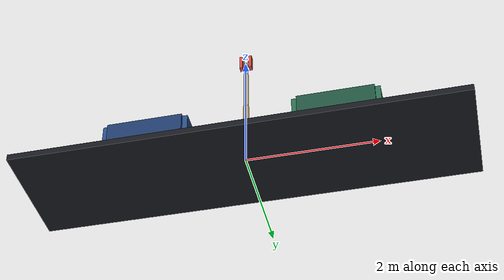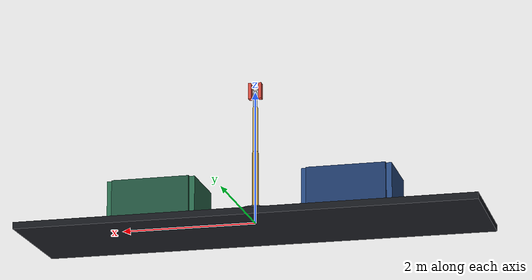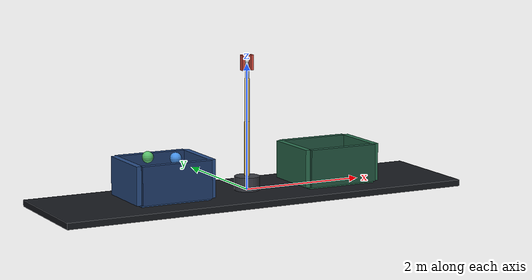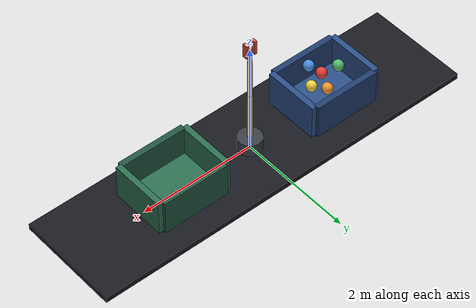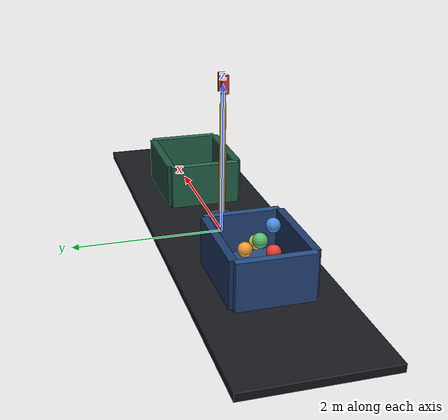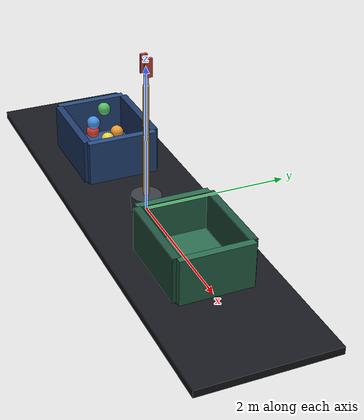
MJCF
<mujoco model="nano_robot_sorter">
  <compiler angle="degree" coordinate="local"/>
  <option timestep="0.004" gravity="0 0 -9.81"/>

  <default>
    <geom friction="0.85 0.12 0.08" solref="0.012 1" solimp="0.9 0.96 0.001"/>
    <joint damping="1.2" armature="0.02"/>
  </default>

  <worldbody>
    <geom name="floor" type="box" pos="0 0 -0.05" size="3.4 0.9 0.05" rgba="0.09 0.10 0.12 1"/>

    <geom name="source_floor" type="box" pos="-1.45 0 0.07" size="0.58 0.48 0.06" rgba="0.16 0.30 0.52 1"/>
    <geom name="source_left_wall" type="box" pos="-2.06 0 0.34" size="0.05 0.48 0.30" rgba="0.16 0.30 0.52 1"/>
    <geom name="source_right_wall" type="box" pos="-0.84 0 0.34" size="0.05 0.48 0.30" rgba="0.16 0.30 0.52 1"/>
    <geom name="source_back_wall" type="box" pos="-1.45 0.48 0.34" size="0.58 0.05 0.30" rgba="0.12 0.23 0.42 1"/>
    <geom name="source_front_wall" type="box" pos="-1.45 -0.48 0.34" size="0.58 0.05 0.30" rgba="0.12 0.23 0.42 1"/>

    <geom name="target_floor" type="box" pos="1.45 0 0.07" size="0.58 0.48 0.06" rgba="0.17 0.43 0.31 1"/>
    <geom name="target_left_wall" type="box" pos="0.84 0 0.34" size="0.05 0.48 0.30" rgba="0.17 0.43 0.31 1"/>
    <geom name="target_right_wall" type="box" pos="2.06 0 0.34" size="0.05 0.48 0.30" rgba="0.17 0.43 0.31 1"/>
    <geom name="target_back_wall" type="box" pos="1.45 0.48 0.34" size="0.58 0.05 0.30" rgba="0.13 0.33 0.25 1"/>
    <geom name="target_front_wall" type="box" pos="1.45 -0.48 0.34" size="0.58 0.05 0.30" rgba="0.13 0.33 0.25 1"/>

    <geom name="base" type="cylinder" pos="0 0 0.11" size="0.20 0.11" rgba="0.23 0.24 0.27 1"/>

    <body name="shoulder" pos="0 0 0.25">
      <joint name="shoulder" type="hinge" axis="0 1 0" limited="true" range="-125 125"/>
      <geom name="upper_arm" type="capsule" fromto="0 0 0 0 0 0.82" size="0.045" mass="0.45" rgba="0.78 0.62 0.26 1"/>

      <body name="elbow" pos="0 0 0.82">
        <joint name="elbow" type="hinge" axis="0 1 0" limited="true" range="-150 150"/>
        <geom name="forearm" type="capsule" fromto="0 0 0 0 0 0.68" size="0.040" mass="0.36" rgba="0.86 0.72 0.36 1"/>

        <body name="wrist" pos="0 0 0.68">
          <joint name="wrist" type="hinge" axis="0 1 0" limited="true" range="-100 100"/>
          <geom name="wrist_link" type="capsule" fromto="0 0 0 0 0 0.24" size="0.030" mass="0.16" rgba="0.70 0.78 0.86 1"/>
          <geom name="left_finger" type="box" pos="-0.075 0 0.27" size="0.022 0.045 0.12" mass="0.04" rgba="0.86 0.30 0.25 1"/>
          <geom name="right_finger" type="box" pos="0.075 0 0.27" size="0.022 0.045 0.12" mass="0.04" rgba="0.86 0.30 0.25 1"/>
          <site name="gripper_site" pos="0 0 0.30" size="0.035" rgba="1 1 1 1"/>
        </body>
      </body>
    </body>

    <body name="ball_0" pos="-1.55 -0.16 0.42"><freejoint/><geom name="ball_0_geom" type="sphere" size="0.09" mass="0.08" rgba="0.94 0.25 0.21 1"/></body>
    <body name="ball_1" pos="-1.40 0.14 0.42"><freejoint/><geom name="ball_1_geom" type="sphere" size="0.09" mass="0.08" rgba="0.95 0.62 0.20 1"/></body>
    <body name="ball_2" pos="-1.25 -0.05 0.42"><freejoint/><geom name="ball_2_geom" type="sphere" size="0.09" mass="0.08" rgba="0.96 0.84 0.25 1"/></body>
    <body name="ball_3" pos="-1.68 0.06 0.66"><freejoint/><geom name="ball_3_geom" type="sphere" size="0.09" mass="0.08" rgba="0.35 0.75 0.42 1"/></body>
    <body name="ball_4" pos="-1.34 -0.22 0.66"><freejoint/><geom name="ball_4_geom" type="sphere" size="0.09" mass="0.08" rgba="0.28 0.58 0.92 1"/></body>
  </worldbody>

  <actuator>
    <motor name="shoulder_motor" joint="shoulder" gear="24" ctrllimited="true" ctrlrange="-1 1"/>
    <motor name="elbow_motor" joint="elbow" gear="18" ctrllimited="true" ctrlrange="-1 1"/>
    <motor name="wrist_motor" joint="wrist" gear="10" ctrllimited="true" ctrlrange="-1 1"/>
  </actuator>
</mujoco>
